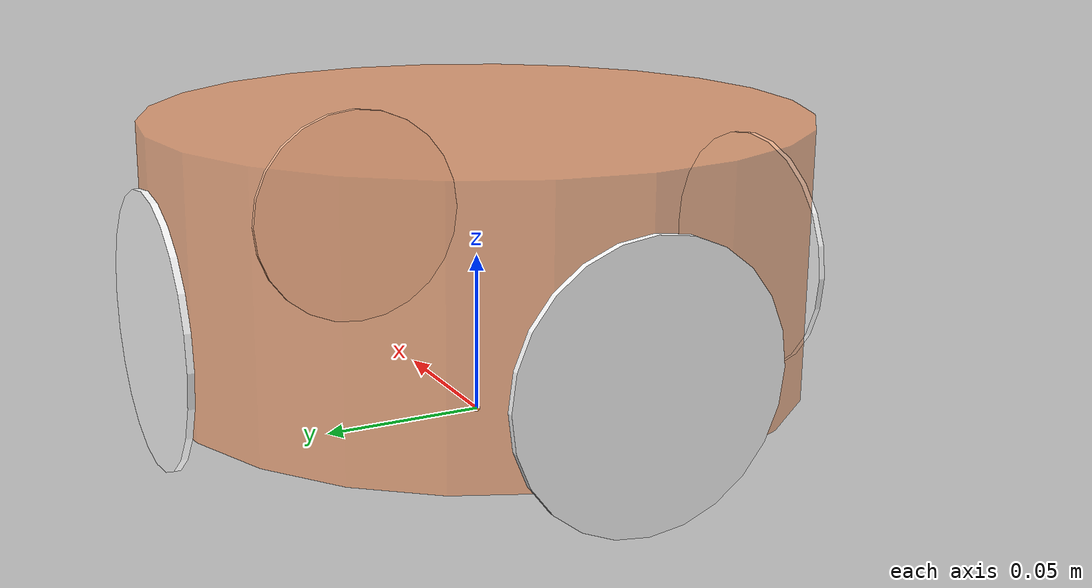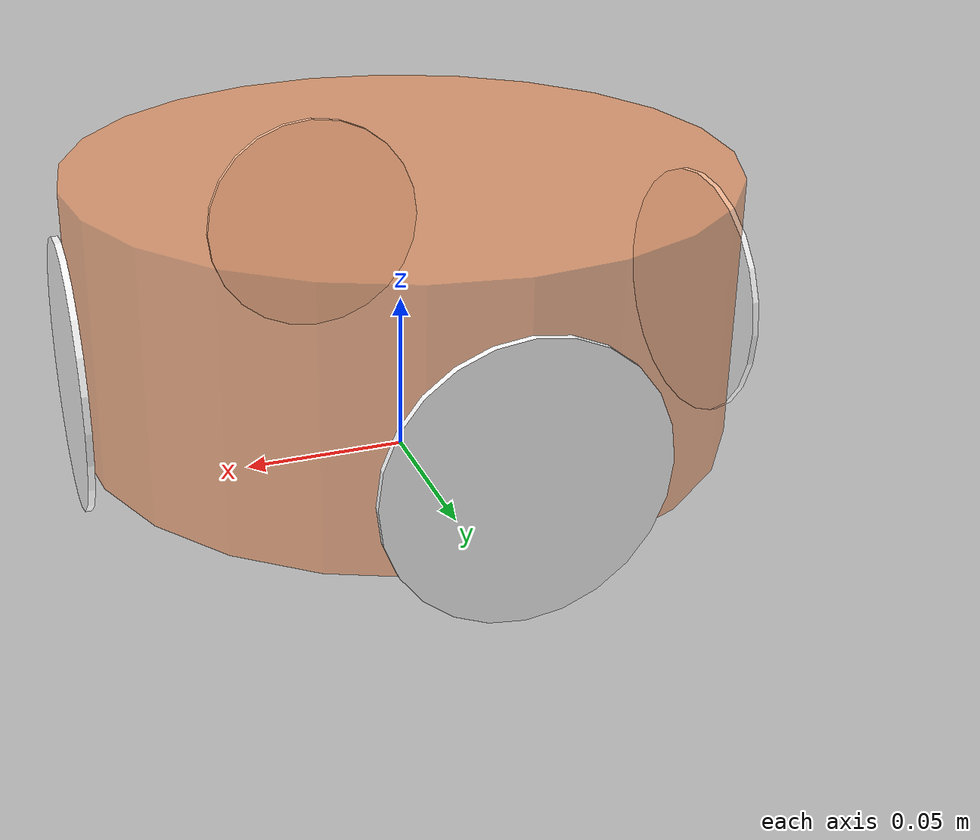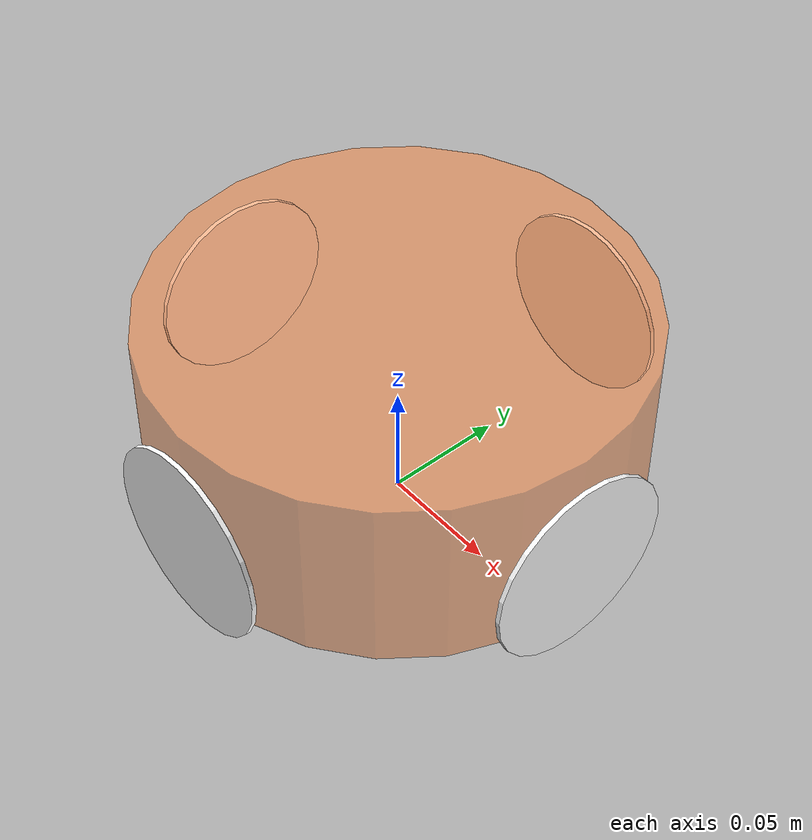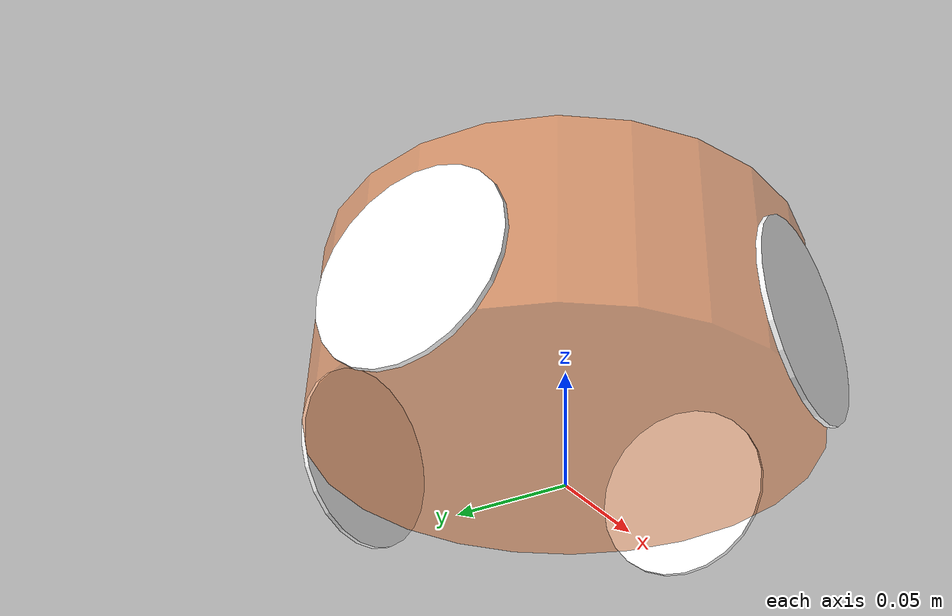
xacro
<robot name="mycar" xmlns:xacro="http://wiki.ros.org/xacro">
    <xacro:property name="PI" value="3.1415926"/>
    <xacro:property name="radius" value="0.1"/>
    <xacro:property name="footprint" value="0.001"/>
    <xacro:property name="wheel_radius" value="0.04"/>
    <xacro:property name="wheel_lenth" value="0.002"/>
    <xacro:property name="hight" value="0.015"/>
    <xacro:property name="base_lenth" value="0.08"/>

    <xacro:property name="wheel_joint_z" value="${-1*(base_lenth/2.0 -wheel_radius + hight)}"/>

    <link name = "base_footprint">
        <visual>
            <geometry>
                <sphere radius="${footprint}" />
            </geometry>
        </visual>
    </link>

    <link name="base_link">
        <visual>
            <geometry>
                <cylinder radius="${radius}" length="${base_lenth}" />
            </geometry>
            <origin xyz="0 0 0" rpy="0 0 0"/>
            <material name="BL_clolor">
                <color rgba="1.0 0.5 0.2 0.5" />
            </material>
        </visual>
    </link>
<joint name="L1" type="fixed">
        <parent link="base_footprint" />
        <child link="base_link" />
        <origin xyz="0 0 ${hight+base_lenth/2.0}" />
    </joint>

<xacro:macro name="mk_wheel" params="wheel_name flag1 flag2">
     <link name="${wheel_name}_wheel">
        <visual>
            <origin xyz="0 0 0" rpy="${PI*flag2*flag2/2.0} ${PI*flag1*flag1/2.0} 0" />
            <geometry>
                <cylinder radius="${wheel_radius}" length="${wheel_lenth}" />
            </geometry>
            <material name="wheel_color">
                <color rgba="1 1 1 1" />
            </material>
        </visual>
    </link>
    <joint name="base_${wheel_name}_wheel_joint" type="fixed">
        <parent link="base_link" />
        <child link="${wheel_name}_wheel" />
        <origin xyz="${(radius+wheel_lenth/2.0)*flag1} ${(radius+wheel_lenth/2.0)*flag2} ${wheel_joint_z}" rpy="0 0 0" />
        <axis xyz="${flag1} ${flag2} 0" />
    </joint>
</xacro:macro>

    <xacro:mk_wheel wheel_name="l" flag1="0.0" flag2="1.0"/>
    <xacro:mk_wheel wheel_name="r" flag1="0.0" flag2="-1.0"/>
    <xacro:mk_wheel wheel_name="f" flag1="1.0" flag2="0.0"/>
    <xacro:mk_wheel wheel_name="back" flag1="-1.0" flag2="0.0"/>

</robot>
